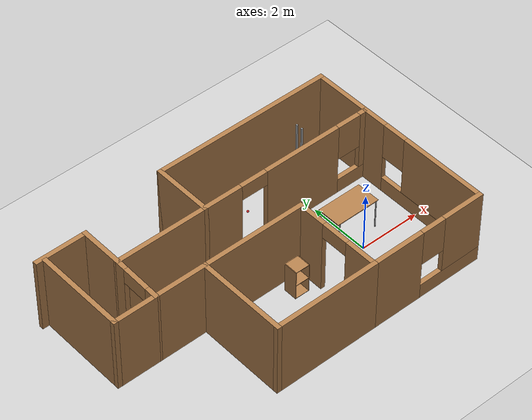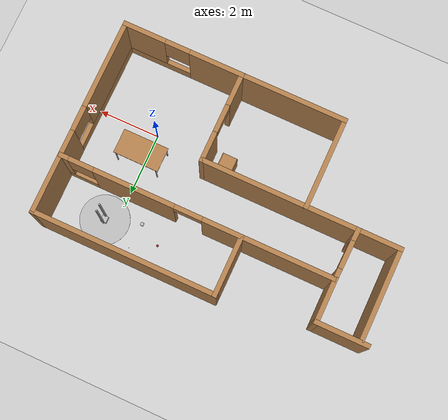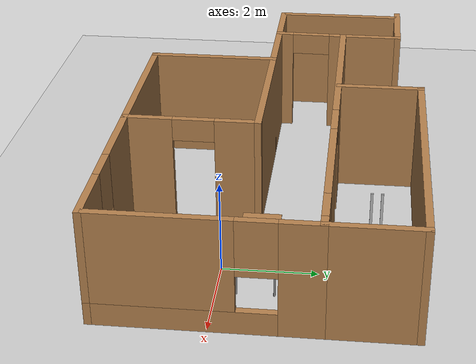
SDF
<sdf version="1.6">
 <world name="default">
  <light name="sun" type="directional">
   <pose>0 0 10 0 -0 0</pose>
   <diffuse>0.8 0.8 0.8 1</diffuse>
   <specular>0.2 0.2 0.2 1</specular>
   <attenuation>
    <range>1000</range>
    <constant>0.9</constant>
    <linear>0.01</linear>
    <quadratic>0.001</quadratic>
   </attenuation>
   <direction>-0.5 0.1 -0.9</direction>
  </light>
  <model name="ground_plane">
   <static>1</static>
   <link name="link">
    <collision name="collision">
     <geometry><plane><normal>0 0 1</normal><size>100 100</size></plane></geometry>
     <surface>
      <contact><collide_bitmask>65535</collide_bitmask></contact>
      <friction><ode><mu>100</mu><mu2>50</mu2></ode></friction>
     </surface>
    </collision>
    <visual name="visual">
     <cast_shadows>0</cast_shadows>
     <geometry><plane><normal>0 0 1</normal><size>100 100</size></plane></geometry>
     <material>
      <script><uri>file://media/materials/scripts/gazebo.material</uri><name>Gazebo/Grey</name></script>
     </material>
    </visual>
   </link>
  </model>
  <gravity>0 0 -9.8</gravity>
  <magnetic_field>6e-06 2.3e-05 -4.2e-05</magnetic_field>
  <atmosphere type="adiabatic"/>
  <physics name="default_physics" default="0" type="ode">
   <max_step_size>0.001</max_step_size>
   <real_time_factor>1</real_time_factor>
   <real_time_update_rate>1000</real_time_update_rate>
  </physics>
  <scene><ambient>0.4 0.4 0.4 1</ambient><background>0.7 0.7 0.7 1</background><shadows>1</shadows></scene>
  <spherical_coordinates>
   <surface_model>EARTH_WGS84</surface_model>
   <latitude_deg>0</latitude_deg>
   <longitude_deg>0</longitude_deg>
   <elevation>0</elevation>
   <heading_deg>0</heading_deg>
  </spherical_coordinates>
  <model name="Custom_env">
   <pose>-3.19842 0.872912 0 0 -0 0</pose>
   <link name="Wall_10">
    <pose>0.8 1.3 0 0 -0 0</pose>
    <visual name="Wall_10_Visual_0">
     <pose>-2.33627 0 1.25 0 -0 0</pose>
     <geometry><box><size>4.29268 0.15 2.5</size></box></geometry>
     <material>
      <script><uri>file://media/materials/scripts/gazebo.material</uri><name>Gazebo/Wood</name></script>
      <ambient>1 1 1 1</ambient>
     </material>
     <meta><layer>0</layer></meta>
    </visual>
    <collision name="Wall_10_Collision_0">
     <geometry><box><size>4.29268 0.15 2.5</size></box></geometry>
     <pose>-2.33627 0 1.25 0 -0 0</pose>
    </collision>
    <visual name="Wall_10_Visual_1">
     <pose>2.0242 0 1.25 0 -0 0</pose>
     <geometry><box><size>2.62826 0.15 2.5</size></box></geometry>
     <material>
      <script><uri>file://media/materials/scripts/gazebo.material</uri><name>Gazebo/Wood</name></script>
      <ambient>1 1 1 1</ambient>
     </material>
     <meta><layer>0</layer></meta>
    </visual>
    <collision name="Wall_10_Collision_1">
     <geometry><box><size>2.62826 0.15 2.5</size></box></geometry>
     <pose>2.0242 0 1.25 0 -0 0</pose>
    </collision>
    <visual name="Wall_10_Visual_2">
     <pose>3.91047 0 0.25 0 -0 0</pose>
     <geometry><box><size>1.14428 0.15 0.5</size></box></geometry>
     <material>
      <script><uri>file://media/materials/scripts/gazebo.material</uri><name>Gazebo/Wood</name></script>
      <ambient>1 1 1 1</ambient>
     </material>
     <meta><layer>0</layer></meta>
    </visual>
    <collision name="Wall_10_Collision_2">
     <geometry><box><size>1.14428 0.15 0.5</size></box></geometry>
     <pose>3.91047 0 0.25 0 -0 0</pose>
    </collision>
    <visual name="Wall_10_Visual_3">
     <pose>4.31047 0 1.5 0 -0 0</pose>
     <geometry><box><size>0.34428 0.15 2</size></box></geometry>
     <material>
      <script><uri>file://media/materials/scripts/gazebo.material</uri><name>Gazebo/Wood</name></script>
      <ambient>1 1 1 1</ambient>
     </material>
     <meta><layer>0</layer></meta>
    </visual>
    <collision name="Wall_10_Collision_3">
     <geometry><box><size>0.34428 0.15 2</size></box></geometry>
     <pose>4.31047 0 1.5 0 -0 0</pose>
    </collision>
    <visual name="Wall_10_Visual_4">
     <pose>3.73833 0 1.9 0 -0 0</pose>
     <geometry><box><size>0.8 0.15 1.2</size></box></geometry>
     <material>
      <script><uri>file://media/materials/scripts/gazebo.material</uri><name>Gazebo/Wood</name></script>
      <ambient>1 1 1 1</ambient>
     </material>
     <meta><layer>0</layer></meta>
    </visual>
    <collision name="Wall_10_Collision_4">
     <geometry><box><size>0.8 0.15 1.2</size></box></geometry>
     <pose>3.73833 0 1.9 0 -0 0</pose>
    </collision>
    <visual name="Wall_10_Visual_5">
     <pose>0.260068 0 2.25 0 -0 0</pose>
     <geometry><box><size>0.9 0.15 0.5</size></box></geometry>
     <material>
      <script><uri>file://media/materials/scripts/gazebo.material</uri><name>Gazebo/Wood</name></script>
      <ambient>1 1 1 1</ambient>
     </material>
     <meta><layer>0</layer></meta>
    </visual>
    <collision name="Wall_10_Collision_5">
     <geometry><box><size>0.9 0.15 0.5</size></box></geometry>
     <pose>0.260068 0 2.25 0 -0 0</pose>
    </collision>
   </link>
   <link name="Wall_11">
    <pose>5.20761 -0.875 0 0 0 -1.5708</pose>
    <visual name="Wall_11_Visual_0">
     <pose>-1.80486 0 1.25 0 -0 0</pose>
     <geometry><box><size>0.890275 0.15 2.5</size></box></geometry>
     <material>
      <script><uri>file://media/materials/scripts/gazebo.material</uri><name>Gazebo/Wood</name></script>
      <ambient>1 1 1 1</ambient>
     </material>
     <meta><layer>0</layer></meta>
    </visual>
    <collision name="Wall_11_Collision_0">
     <geometry><box><size>0.890275 0.15 2.5</size></box></geometry>
     <pose>-1.80486 0 1.25 0 -0 0</pose>
    </collision>
    <visual name="Wall_11_Visual_1">
     <pose>0.445138 0 0.25 0 -0 0</pose>
     <geometry><box><size>3.60973 0.15 0.5</size></box></geometry>
     <material>
      <script><uri>file://media/materials/scripts/gazebo.material</uri><name>Gazebo/Wood</name></script>
      <ambient>1 1 1 1</ambient>
     </material>
     <meta><layer>0</layer></meta>
    </visual>
    <collision name="Wall_11_Collision_1">
     <geometry><box><size>3.60973 0.15 0.5</size></box></geometry>
     <pose>0.445138 0 0.25 0 -0 0</pose>
    </collision>
    <visual name="Wall_11_Visual_2">
     <pose>0.845138 0 1.5 0 -0 0</pose>
     <geometry><box><size>2.80972 0.15 2</size></box></geometry>
     <material>
      <script><uri>file://media/materials/scripts/gazebo.material</uri><name>Gazebo/Wood</name></script>
      <ambient>1 1 1 1</ambient>
     </material>
     <meta><layer>0</layer></meta>
    </visual>
    <collision name="Wall_11_Collision_2">
     <geometry><box><size>2.80972 0.15 2</size></box></geometry>
     <pose>0.845138 0 1.5 0 -0 0</pose>
    </collision>
    <visual name="Wall_11_Visual_3">
     <pose>-0.959725 0 1.9 0 -0 0</pose>
     <geometry><box><size>0.8 0.15 1.2</size></box></geometry>
     <material>
      <script><uri>file://media/materials/scripts/gazebo.material</uri><name>Gazebo/Wood</name></script>
      <ambient>1 1 1 1</ambient>
     </material>
     <meta><layer>0</layer></meta>
    </visual>
    <collision name="Wall_11_Collision_3">
     <geometry><box><size>0.8 0.15 1.2</size></box></geometry>
     <pose>-0.959725 0 1.9 0 -0 0</pose>
    </collision>
   </link>
   <link name="Wall_13">
    <pose>3.28261 -3.15 0 0 -0 0</pose>
    <visual name="Wall_13_Visual_0">
     <pose>-1.10547 0 1.25 0 -0 0</pose>
     <geometry><box><size>1.78905 0.15 2.5</size></box></geometry>
     <material>
      <script><uri>file://media/materials/scripts/gazebo.material</uri><name>Gazebo/Wood</name></script>
      <ambient>1 1 1 1</ambient>
     </material>
     <meta><layer>0</layer></meta>
    </visual>
    <collision name="Wall_13_Collision_0">
     <geometry><box><size>1.78905 0.15 2.5</size></box></geometry>
     <pose>-1.10547 0 1.25 0 -0 0</pose>
    </collision>
    <visual name="Wall_13_Visual_1">
     <pose>0.894527 0 0.25 0 -0 0</pose>
     <geometry><box><size>2.21095 0.15 0.5</size></box></geometry>
     <material>
      <script><uri>file://media/materials/scripts/gazebo.material</uri><name>Gazebo/Wood</name></script>
      <ambient>1 1 1 1</ambient>
     </material>
     <meta><layer>0</layer></meta>
    </visual>
    <collision name="Wall_13_Collision_1">
     <geometry><box><size>2.21095 0.15 0.5</size></box></geometry>
     <pose>0.894527 0 0.25 0 -0 0</pose>
    </collision>
    <visual name="Wall_13_Visual_2">
     <pose>1.29453 0 1.5 0 -0 0</pose>
     <geometry><box><size>1.41095 0.15 2</size></box></geometry>
     <material>
      <script><uri>file://media/materials/scripts/gazebo.material</uri><name>Gazebo/Wood</name></script>
      <ambient>1 1 1 1</ambient>
     </material>
     <meta><layer>0</layer></meta>
    </visual>
    <collision name="Wall_13_Collision_2">
     <geometry><box><size>1.41095 0.15 2</size></box></geometry>
     <pose>1.29453 0 1.5 0 -0 0</pose>
    </collision>
    <visual name="Wall_13_Visual_3">
     <pose>0.189054 0 1.9 0 -0 0</pose>
     <geometry><box><size>0.8 0.15 1.2</size></box></geometry>
     <material>
      <script><uri>file://media/materials/scripts/gazebo.material</uri><name>Gazebo/Wood</name></script>
      <ambient>1 1 1 1</ambient>
     </material>
     <meta><layer>0</layer></meta>
    </visual>
    <collision name="Wall_13_Collision_3">
     <geometry><box><size>0.8 0.15 1.2</size></box></geometry>
     <pose>0.189054 0 1.9 0 -0 0</pose>
    </collision>
   </link>
   <link name="Wall_15">
    <collision name="Wall_15_Collision">
     <geometry><box><size>3.5 0.15 2.5</size></box></geometry>
     <pose>0 0 1.25 0 -0 0</pose>
    </collision>
    <visual name="Wall_15_Visual">
     <pose>0 0 1.25 0 -0 0</pose>
     <geometry><box><size>3.5 0.15 2.5</size></box></geometry>
     <material>
      <script><uri>file://media/materials/scripts/gazebo.material</uri><name>Gazebo/Wood</name></script>
      <ambient>1 1 1 1</ambient>
     </material>
     <meta><layer>0</layer></meta>
    </visual>
    <pose>-0.317391 -3.15 0 0 -0 3.14159</pose>
   </link>
   <link name="Wall_16">
    <collision name="Wall_16_Collision">
     <geometry><box><size>3 0.15 2.5</size></box></geometry>
     <pose>0 0 1.25 0 -0 0</pose>
    </collision>
    <visual name="Wall_16_Visual">
     <pose>0 0 1.25 0 -0 0</pose>
     <geometry><box><size>3 0.15 2.5</size></box></geometry>
     <material>
      <script><uri>file://media/materials/scripts/gazebo.material</uri><name>Gazebo/Wood</name></script>
      <ambient>1 1 1 1</ambient>
     </material>
     <meta><layer>0</layer></meta>
    </visual>
    <pose>-1.99239 -1.725 0 0 -0 1.5708</pose>
   </link>
   <link name="Wall_18">
    <collision name="Wall_18_Collision">
     <geometry><box><size>2 0.15 2.5</size></box></geometry>
     <pose>0 0 1.25 0 -0 0</pose>
    </collision>
    <visual name="Wall_18_Visual">
     <pose>0 0 1.25 0 -0 0</pose>
     <geometry><box><size>2 0.15 2.5</size></box></geometry>
     <material>
      <script><uri>file://media/materials/scripts/gazebo.material</uri><name>Gazebo/Wood</name></script>
      <ambient>1 1 1 1</ambient>
     </material>
     <meta><layer>0</layer></meta>
    </visual>
    <pose>5.20761 2.225 0 0 -0 1.5708</pose>
   </link>
   <link name="Wall_19">
    <collision name="Wall_19_Collision">
     <geometry><box><size>6 0.15 2.5</size></box></geometry>
     <pose>0 0 1.25 0 -0 0</pose>
    </collision>
    <visual name="Wall_19_Visual">
     <pose>0 0 1.25 0 -0 0</pose>
     <geometry><box><size>6 0.15 2.5</size></box></geometry>
     <material>
      <script><uri>file://media/materials/scripts/gazebo.material</uri><name>Gazebo/Wood</name></script>
      <ambient>1 1 1 1</ambient>
     </material>
     <meta><layer>0</layer></meta>
    </visual>
    <pose>2.28261 3.15 0 0 -0 3.14159</pose>
   </link>
   <link name="Wall_20">
    <collision name="Wall_20_Collision">
     <geometry><box><size>2 0.15 2.5</size></box></geometry>
     <pose>0 0 1.25 0 -0 0</pose>
    </collision>
    <visual name="Wall_20_Visual">
     <pose>0 0 1.25 0 -0 0</pose>
     <geometry><box><size>2 0.15 2.5</size></box></geometry>
     <material>
      <script><uri>file://media/materials/scripts/gazebo.material</uri><name>Gazebo/Wood</name></script>
      <ambient>1 1 1 1</ambient>
     </material>
     <meta><layer>0</layer></meta>
    </visual>
    <pose>-0.642392 2.225 0 0 0 -1.5708</pose>
   </link>
   <link name="Wall_23">
    <collision name="Wall_23_Collision">
     <geometry><box><size>1.5 0.15 2.5</size></box></geometry>
     <pose>0 0 1.25 0 -0 0</pose>
    </collision>
    <visual name="Wall_23_Visual">
     <pose>0 0 1.25 0 -0 0</pose>
     <geometry><box><size>1.5 0.15 2.5</size></box></geometry>
     <material>
      <script><uri>file://media/materials/scripts/gazebo.material</uri><name>Gazebo/Wood</name></script>
      <ambient>1 1 1 1</ambient>
     </material>
     <meta><layer>0</layer></meta>
    </visual>
    <pose>-3.60761 1.975 0 0 -0 1.5708</pose>
   </link>
   <link name="Wall_24">
    <collision name="Wall_24_Collision">
     <geometry><box><size>1.75 0.15 2.5</size></box></geometry>
     <pose>0 0 1.25 0 -0 0</pose>
    </collision>
    <visual name="Wall_24_Visual">
     <pose>0 0 1.25 0 -0 0</pose>
     <geometry><box><size>1.75 0.15 2.5</size></box></geometry>
     <material>
      <script><uri>file://media/materials/scripts/gazebo.material</uri><name>Gazebo/Wood</name></script>
      <ambient>1 1 1 1</ambient>
     </material>
     <meta><layer>0</layer></meta>
    </visual>
    <pose>-4.40761 2.65 0 0 -0 3.14159</pose>
   </link>
   <link name="Wall_4">
    <pose>1.35761 -1.725 0 0 -0 1.5708</pose>
    <visual name="Wall_4_Visual_0">
     <pose>-0.951297 0 1.25 0 -0 0</pose>
     <geometry><box><size>1.09741 0.15 2.5</size></box></geometry>
     <material>
      <script><uri>file://media/materials/scripts/gazebo.material</uri><name>Gazebo/Wood</name></script>
      <ambient>1 1 1 1</ambient>
     </material>
     <meta><layer>0</layer></meta>
    </visual>
    <collision name="Wall_4_Collision_0">
     <geometry><box><size>1.09741 0.15 2.5</size></box></geometry>
     <pose>-0.951297 0 1.25 0 -0 0</pose>
    </collision>
    <visual name="Wall_4_Visual_1">
     <pose>0.998703 0 1.25 0 -0 0</pose>
     <geometry><box><size>1.00259 0.15 2.5</size></box></geometry>
     <material>
      <script><uri>file://media/materials/scripts/gazebo.material</uri><name>Gazebo/Wood</name></script>
      <ambient>1 1 1 1</ambient>
     </material>
     <meta><layer>0</layer></meta>
    </visual>
    <collision name="Wall_4_Collision_1">
     <geometry><box><size>1.00259 0.15 2.5</size></box></geometry>
     <pose>0.998703 0 1.25 0 -0 0</pose>
    </collision>
    <visual name="Wall_4_Visual_2">
     <pose>0.047406 0 2.25 0 -0 0</pose>
     <geometry><box><size>0.9 0.15 0.5</size></box></geometry>
     <material>
      <script><uri>file://media/materials/scripts/gazebo.material</uri><name>Gazebo/Wood</name></script>
      <ambient>1 1 1 1</ambient>
     </material>
     <meta><layer>0</layer></meta>
    </visual>
    <collision name="Wall_4_Collision_2">
     <geometry><box><size>0.9 0.15 0.5</size></box></geometry>
     <pose>0.047406 0 2.25 0 -0 0</pose>
    </collision>
   </link>
   <link name="Wall_5">
    <collision name="Wall_5_Collision">
     <geometry><box><size>6.5 0.15 2.5</size></box></geometry>
     <pose>0 0 1.25 0 -0 0</pose>
    </collision>
    <visual name="Wall_5_Visual">
     <pose>0 0 1.25 0 -0 0</pose>
     <geometry><box><size>6.5 0.15 2.5</size></box></geometry>
     <material>
      <script><uri>file://media/materials/scripts/gazebo.material</uri><name>Gazebo/Wood</name></script>
      <ambient>1 1 1 1</ambient>
     </material>
     <meta><layer>0</layer></meta>
    </visual>
    <pose>-1.81739 -0.3 0 0 -0 3.14159</pose>
   </link>
   <link name="Wall_6">
    <collision name="Wall_6_Collision">
     <geometry><box><size>3 0.15 2.5</size></box></geometry>
     <pose>0 0 1.25 0 -0 0</pose>
    </collision>
    <visual name="Wall_6_Visual">
     <pose>0 0 1.25 0 -0 0</pose>
     <geometry><box><size>3 0.15 2.5</size></box></geometry>
     <material>
      <script><uri>file://media/materials/scripts/gazebo.material</uri><name>Gazebo/Wood</name></script>
      <ambient>1 1 1 1</ambient>
     </material>
     <meta><layer>0</layer></meta>
    </visual>
    <pose>-4.99239 1.125 0 0 -0 1.5708</pose>
   </link>
   <link name="Wall_8">
    <pose>-3.625 0.5 0 0 0 -1.59253</pose>
    <visual name="Wall_8_Visual_0">
     <pose>-0.663591 0 1.25 0 -0 0</pose>
     <geometry><box><size>0.422818 0.15 2.5</size></box></geometry>
     <material>
      <script><uri>file://media/materials/scripts/gazebo.material</uri><name>Gazebo/Wood</name></script>
      <ambient>1 1 1 1</ambient>
     </material>
     <meta><layer>0</layer></meta>
    </visual>
    <collision name="Wall_8_Collision_0">
     <geometry><box><size>0.422818 0.15 2.5</size></box></geometry>
     <pose>-0.663591 0 1.25 0 -0 0</pose>
    </collision>
    <visual name="Wall_8_Visual_1">
     <pose>0.661409 0 1.25 0 -0 0</pose>
     <geometry><box><size>0.427182 0.15 2.5</size></box></geometry>
     <material>
      <script><uri>file://media/materials/scripts/gazebo.material</uri><name>Gazebo/Wood</name></script>
      <ambient>1 1 1 1</ambient>
     </material>
     <meta><layer>0</layer></meta>
    </visual>
    <collision name="Wall_8_Collision_1">
     <geometry><box><size>0.427182 0.15 2.5</size></box></geometry>
     <pose>0.661409 0 1.25 0 -0 0</pose>
    </collision>
    <visual name="Wall_8_Visual_2">
     <pose>-0.002182 0 2.25 0 -0 0</pose>
     <geometry><box><size>0.9 0.15 0.5</size></box></geometry>
     <material>
      <script><uri>file://media/materials/scripts/gazebo.material</uri><name>Gazebo/Wood</name></script>
      <ambient>1 1 1 1</ambient>
     </material>
     <meta><layer>0</layer></meta>
    </visual>
    <collision name="Wall_8_Collision_2">
     <geometry><box><size>0.9 0.15 0.5</size></box></geometry>
     <pose>-0.002182 0 2.25 0 -0 0</pose>
    </collision>
   </link>
   <static>1</static>
  </model>
  <model name="table">
   <static>1</static>
   <link name="link">
    <collision name="surface">
     <pose>0 0 1 0 -0 0</pose>
     <geometry><box><size>1.5 0.8 0.03</size></box></geometry>
     <surface><friction><ode><mu>0.6</mu><mu2>0.6</mu2></ode></friction></surface>
    </collision>
    <visual name="visual1">
     <pose>0 0 1 0 -0 0</pose>
     <geometry><box><size>1.5 0.8 0.03</size></box></geometry>
     <material>
      <script><uri>file://media/materials/scripts/gazebo.material</uri><name>Gazebo/Wood</name></script>
     </material>
    </visual>
    <collision name="front_left_leg">
     <pose>0.68 0.38 0.5 0 -0 0</pose>
     <geometry><cylinder><radius>0.02</radius><length>1</length></cylinder></geometry>
    </collision>
    <visual name="front_left_leg">
     <pose>0.68 0.38 0.5 0 -0 0</pose>
     <geometry><cylinder><radius>0.02</radius><length>1</length></cylinder></geometry>
     <material>
      <script><uri>file://media/materials/scripts/gazebo.material</uri><name>Gazebo/Grey</name></script>
     </material>
    </visual>
    <collision name="front_right_leg">
     <pose>0.68 -0.38 0.5 0 -0 0</pose>
     <geometry><cylinder><radius>0.02</radius><length>1</length></cylinder></geometry>
    </collision>
    <visual name="front_right_leg">
     <pose>0.68 -0.38 0.5 0 -0 0</pose>
     <geometry><cylinder><radius>0.02</radius><length>1</length></cylinder></geometry>
     <material>
      <script><uri>file://media/materials/scripts/gazebo.material</uri><name>Gazebo/Grey</name></script>
     </material>
    </visual>
    <collision name="back_right_leg">
     <pose>-0.68 -0.38 0.5 0 -0 0</pose>
     <geometry><cylinder><radius>0.02</radius><length>1</length></cylinder></geometry>
    </collision>
    <visual name="back_right_leg">
     <pose>-0.68 -0.38 0.5 0 -0 0</pose>
     <geometry><cylinder><radius>0.02</radius><length>1</length></cylinder></geometry>
     <material>
      <script><uri>file://media/materials/scripts/gazebo.material</uri><name>Gazebo/Grey</name></script>
     </material>
    </visual>
    <collision name="back_left_leg">
     <pose>-0.68 0.38 0.5 0 -0 0</pose>
     <geometry><cylinder><radius>0.02</radius><length>1</length></cylinder></geometry>
    </collision>
    <visual name="back_left_leg">
     <pose>-0.68 0.38 0.5 0 -0 0</pose>
     <geometry><cylinder><radius>0.02</radius><length>1</length></cylinder></geometry>
     <material>
      <script><uri>file://media/materials/scripts/gazebo.material</uri><name>Gazebo/Grey</name></script>
     </material>
    </visual>
   </link>
   <pose>0.144596 0.797 0 0 -0 0</pose>
  </model>
  <model name="cabinet">
   <static>1</static>
   <link name="cabinet_bottom_plate">
    <inertial>
     <pose>0 0 -1 0 -0 0</pose>
     <inertia><ixx>2.05</ixx><ixy>0</ixy><ixz>0</ixz><iyy>2.05</iyy><iyz>0</iyz><izz>2.05</izz></inertia>
     <mass>25</mass>
    </inertial>
    <collision name="cabinet_bottom_plate_geom">
     <pose>0 0 0.01 0 -0 0</pose>
     <geometry><box><size>0.45 0.45 0.02</size></box></geometry>
    </collision>
    <visual name="cabinet_bottom_plate_geom_visual">
     <pose>0 0 0.01 0 -0 0</pose>
     <geometry><box><size>0.45 0.45 0.02</size></box></geometry>
     <material>
      <script><uri>file://media/materials/scripts/gazebo.material</uri><name>Gazebo/Wood</name></script>
     </material>
    </visual>
    <collision name="cabinet_bottom_plate_geom_cabinet_back_plate">
     <pose>0.235 0 0.51 0 -0 0</pose>
     <geometry><box><size>0.02 0.45 1.02</size></box></geometry>
    </collision>
    <visual name="cabinet_bottom_plate_geom_cabinet_back_plate_visual">
     <pose>0.235 0 0.51 0 -0 0</pose>
     <geometry><box><size>0.02 0.45 1.02</size></box></geometry>
     <material>
      <script><uri>file://media/materials/scripts/gazebo.material</uri><name>Gazebo/Wood</name></script>
     </material>
    </visual>
    <collision name="cabinet_bottom_plate_geom_cabinet_left_plate">
     <pose>0 0.235 0.51 0 -0 0</pose>
     <geometry><box><size>0.45 0.02 1.02</size></box></geometry>
    </collision>
    <visual name="cabinet_bottom_plate_geom_cabinet_left_plate_visual">
     <pose>0 0.235 0.51 0 -0 0</pose>
     <geometry><box><size>0.45 0.02 1.02</size></box></geometry>
     <material>
      <script><uri>file://media/materials/scripts/gazebo.material</uri><name>Gazebo/Wood</name></script>
     </material>
    </visual>
    <collision name="cabinet_bottom_plate_geom_cabinet_middle_plate">
     <pose>0 0 0.51 0 -0 0</pose>
     <geometry><box><size>0.45 0.45 0.02</size></box></geometry>
    </collision>
    <visual name="cabinet_bottom_plate_geom_cabinet_middle_plate_visual">
     <pose>0 0 0.51 0 -0 0</pose>
     <geometry><box><size>0.45 0.45 0.02</size></box></geometry>
     <material>
      <script><uri>file://media/materials/scripts/gazebo.material</uri><name>Gazebo/Wood</name></script>
     </material>
    </visual>
    <collision name="cabinet_bottom_plate_geom_cabinet_right_plate">
     <pose>0 -0.235 0.51 0 -0 0</pose>
     <geometry><box><size>0.45 0.02 1.02</size></box></geometry>
    </collision>
    <visual name="cabinet_bottom_plate_geom_cabinet_right_plate_visual">
     <pose>0 -0.235 0.51 0 -0 0</pose>
     <geometry><box><size>0.45 0.02 1.02</size></box></geometry>
     <material>
      <script><uri>file://media/materials/scripts/gazebo.material</uri><name>Gazebo/Wood</name></script>
     </material>
    </visual>
    <collision name="cabinet_bottom_plate_geom_cabinet_top_plate">
     <pose>0 0 1.01 0 -0 0</pose>
     <geometry><box><size>0.45 0.45 0.02</size></box></geometry>
    </collision>
    <visual name="cabinet_bottom_plate_geom_cabinet_top_plate_visual">
     <pose>0 0 1.01 0 -0 0</pose>
     <geometry><box><size>0.45 0.45 0.02</size></box></geometry>
     <material>
      <script><uri>file://media/materials/scripts/gazebo.material</uri><name>Gazebo/Wood</name></script>
     </material>
    </visual>
   </link>
   <pose>-2.43236 0.039534 0 0 -0 1.56403</pose>
  </model>
  <model name="mass_on_rails">
   <link name="base">
    <inertial>
     <mass>100</mass>
     <inertia><ixx>1</ixx><ixy>0</ixy><ixz>0</ixz><iyy>1</iyy><iyz>0</iyz><izz>1</izz></inertia>
    </inertial>
    <visual name="vis_base">
     <pose>0 0 0.01 0 -0 0</pose>
     <geometry><cylinder><radius>0.8</radius><length>0.01</length></cylinder></geometry>
    </visual>
    <collision name="col_base">
     <pose>0 0 0.01 0 -0 0</pose>
     <geometry><cylinder><radius>0.8</radius><length>0.01</length></cylinder></geometry>
    </collision>
    <visual name="vis_rail1">
     <pose>0 0.1 1.1 0 -0 0</pose>
     <geometry><box><size>0.05 0.05 2.2</size></box></geometry>
    </visual>
    <collision name="col_rail1">
     <pose>0 0.1 1.1 0 -0 0</pose>
     <geometry><box><size>0.05 0.05 2.2</size></box></geometry>
    </collision>
    <visual name="vis_rail2">
     <pose>0 -0.1 1.1 0 -0 0</pose>
     <geometry><box><size>0.05 0.05 2.2</size></box></geometry>
    </visual>
    <collision name="col_rail2">
     <pose>0 -0.1 1.1 0 -0 0</pose>
     <geometry><box><size>0.05 0.05 2.2</size></box></geometry>
    </collision>
   </link>
   <link name="mass">
    <inertial>
     <mass>0.1</mass>
     <pose>0 0 0.1 0 -0 0</pose>
     <inertia><ixx>0.00067</ixx><ixy>0</ixy><ixz>0</ixz><iyy>0.00067</iyy><iyz>0</iyz><izz>0.00067</izz></inertia>
    </inertial>
    <visual name="visual">
     <pose>0 0 0.1 0 -0 0</pose>
     <geometry><box><size>0.2 0.2 0.2</size></box></geometry>
    </visual>
    <collision name="collision">
     <pose>0 0 0.1 0 -0 0</pose>
     <geometry><box><size>0.2 0.2 0.2</size></box></geometry>
    </collision>
   </link>
   <joint name="joint" type="prismatic">
    <parent>base</parent>
    <child>mass</child>
    <axis>
     <dynamics>
      <damping>0.01</damping>
      <friction>0.01</friction>
      <spring_reference>0</spring_reference>
      <spring_stiffness>0</spring_stiffness>
     </dynamics>
     <xyz>0 0 1</xyz>
     <limit><lower>0</lower><upper>2</upper></limit>
     <use_parent_model_frame>0</use_parent_model_frame>
    </axis>
   </joint>
   <pose>0.372645 3.09842 0 0 -0 0</pose>
  </model>
  <model name="metal_peg">
   <link name="link">
    <pose>0 0 0.031 0 -0 0</pose>
    <inertial>
     <mass>0.0121</mass>
     <inertia>
      <ixx>3.90898e-06</ixx>
      <ixy>0</ixy>
      <ixz>0</ixz>
      <iyy>3.90898e-06</iyy>
      <iyz>0</iyz>
      <izz>6.58845e-08</izz>
     </inertia>
    </inertial>
    <collision name="collision">
     <geometry><cylinder><radius>0.0033</radius><length>0.062</length></cylinder></geometry>
     <surface>
      <contact>
       <poissons_ratio>0.305</poissons_ratio>
       <elastic_modulus>2e+11</elastic_modulus>
       <ode><kp>100000</kp><kd>100</kd><max_vel>100</max_vel><min_depth>0.001</min_depth></ode>
      </contact>
      <friction>
       <torsional>
        <coefficient>1</coefficient>
        <use_patch_radius>0</use_patch_radius>
        <surface_radius>0.01</surface_radius>
       </torsional>
      </friction>
     </surface>
    </collision>
    <visual name="visual">
     <geometry><cylinder><radius>0.0033</radius><length>0.062</length></cylinder></geometry>
     <material>
      <script><uri>file://media/materials/scripts/gazebo.material</uri><name>Gazebo/Grey</name></script>
     </material>
    </visual>
   </link>
   <pose>1.46925 2.69975 0 0 -0 0</pose>
  </model>
  <model name="marble_1_5cm">
   <link name="link">
    <pose>0 0 0.0075 0 -0 0</pose>
    <inertial>
     <mass>0.0062</mass>
     <inertia>
      <ixx>1.395e-07</ixx>
      <ixy>0</ixy>
      <ixz>0</ixz>
      <iyy>1.395e-07</iyy>
      <iyz>0</iyz>
      <izz>1.395e-07</izz>
     </inertia>
    </inertial>
    <collision name="collision">
     <geometry><sphere><radius>0.0075</radius></sphere></geometry>
     <surface>
      <contact>
       <poissons_ratio>0.22</poissons_ratio>
       <elastic_modulus>5.1e+10</elastic_modulus>
       <ode><kp>100000</kp><kd>100</kd><max_vel>100</max_vel><min_depth>0.001</min_depth></ode>
      </contact>
      <friction>
       <torsional>
        <coefficient>1</coefficient>
        <use_patch_radius>0</use_patch_radius>
        <surface_radius>0.01</surface_radius>
       </torsional>
      </friction>
     </surface>
    </collision>
    <visual name="visual">
     <geometry><sphere><radius>0.0075</radius></sphere></geometry>
     <material>
      <script><uri>file://media/materials/scripts/gazebo.material</uri><name>Gazebo/Blue</name></script>
     </material>
    </visual>
    <velocity_decay><linear>0</linear><angular>0.005</angular></velocity_decay>
   </link>
   <pose>-0.692308 3.58515 0 0 -0 0</pose>
  </model>
  <model name="stereocamera">
   <link name="link">
    <pose>0.05 0.05 0.05 0 -0 0</pose>
    <inertial>
     <mass>0.1</mass>
     <inertia>
      <ixx>0.000166667</ixx>
      <iyy>0.000166667</iyy>
      <izz>0.000166667</izz>
      <ixy>0</ixy>
      <ixz>0</ixz>
      <iyz>0</iyz>
     </inertia>
    </inertial>
    <collision name="collision"><geometry><box><size>0.1 0.1 0.1</size></box></geometry></collision>
    <visual name="visual"><geometry><box><size>0.1 0.1 0.1</size></box></geometry></visual>
    <sensor name="camera" type="multicamera">
     <always_on>1</always_on>
     <update_rate>30</update_rate>
     <visualize>0</visualize>
     <camera name="left">
      <pose>0 0.2 0 0 -0 0</pose>
      <horizontal_fov>1.047</horizontal_fov>
      <image><width>320</width><height>240</height></image>
      <clip><near>0.1</near><far>100</far></clip>
     </camera>
     <camera name="right">
      <pose>0 -0.2 0 0 -0 0</pose>
      <horizontal_fov>1.047</horizontal_fov>
      <image><width>320</width><height>240</height></image>
      <clip><near>0.1</near><far>100</far></clip>
     </camera>
    </sensor>
   </link>
   <pose>-0.804929 2.69881 0 0 -0 0</pose>
  </model>
  <model name="cricket_ball">
   <link name="link">
    <pose>0 0 0.0375 0 -0 0</pose>
    <inertial>
     <mass>0.1467</mass>
     <inertia>
      <ixx>8.25187e-05</ixx>
      <ixy>0</ixy>
      <ixz>0</ixz>
      <iyy>8.25187e-05</iyy>
      <iyz>0</iyz>
      <izz>8.25187e-05</izz>
     </inertia>
    </inertial>
    <collision name="collision">
     <geometry><sphere><radius>0.0375</radius></sphere></geometry>
     <surface>
      <contact>
       <poissons_ratio>0.347</poissons_ratio>
       <elastic_modulus>8.8e+09</elastic_modulus>
       <ode><kp>100000</kp><kd>100</kd><max_vel>100</max_vel><min_depth>0.001</min_depth></ode>
      </contact>
      <friction>
       <torsional>
        <coefficient>1</coefficient>
        <use_patch_radius>0</use_patch_radius>
        <surface_radius>0.01</surface_radius>
       </torsional>
      </friction>
     </surface>
    </collision>
    <visual name="visual">
     <geometry><sphere><radius>0.0375</radius></sphere></geometry>
     <material>
      <script><uri>file://media/materials/scripts/gazebo.material</uri><name>Gazebo/Red</name></script>
     </material>
    </visual>
    <velocity_decay><linear>0</linear><angular>0.005</angular></velocity_decay>
   </link>
   <pose>-1.48045 3.16316 0 0 -0 0</pose>
  </model>
 </world>
</sdf>
